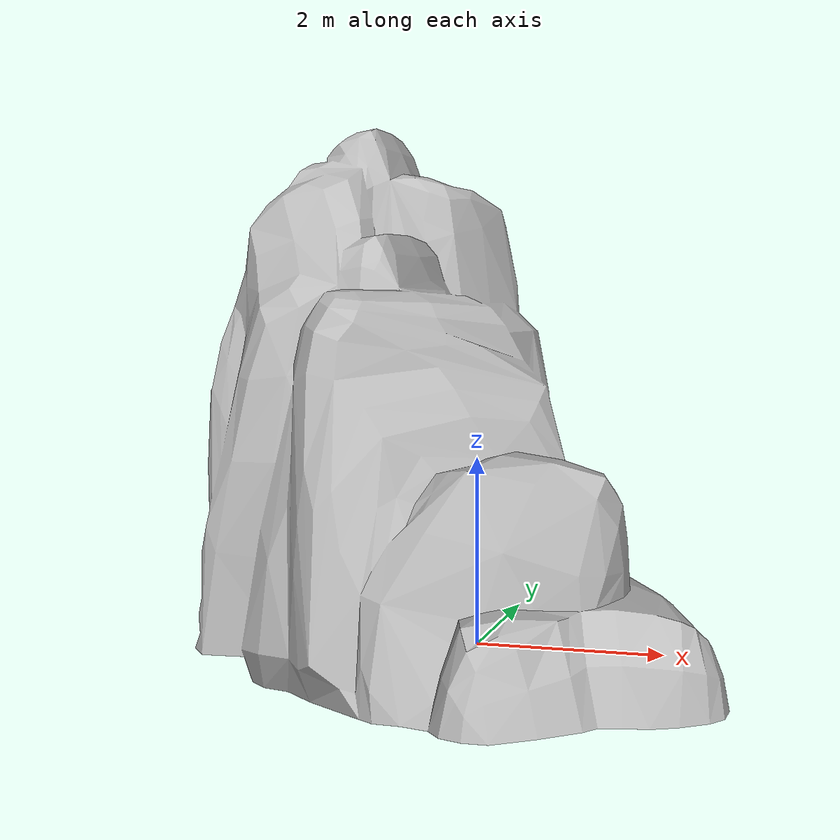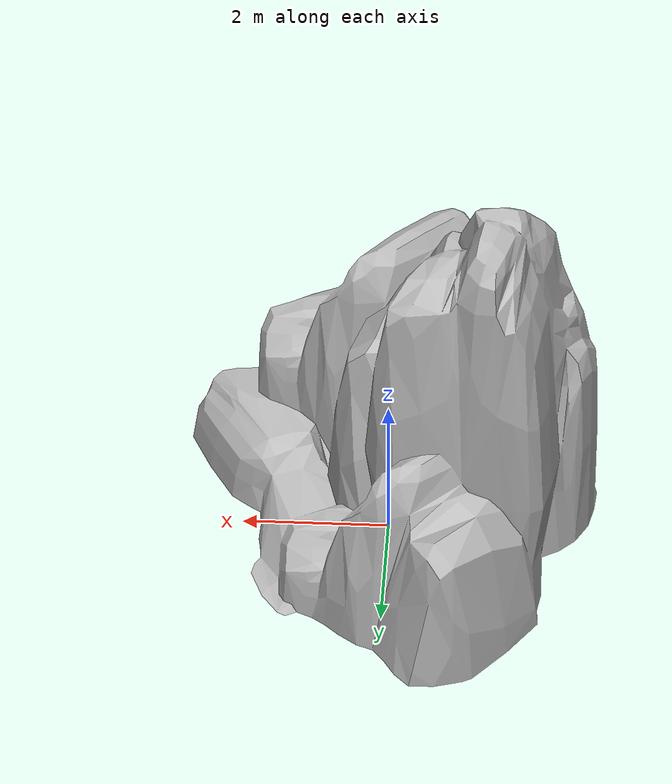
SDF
<sdf version="1.7">
  <model name="rock1">
    <static>true</static>
    <link name="rock1_link">
      <collision name="rock1_collision">
        <geometry>
          <mesh>
            <uri>model://rock1/rock1.dae</uri>
            <scale>1 1 1</scale>
          </mesh>
        </geometry>
      </collision>
      <visual name="rock1_visual">
        <geometry>
          <mesh>
            <uri>model://rock1/rock1.dae</uri>
            <scale>1 1 1</scale>
          </mesh>
        </geometry>
      </visual>
    </link>
  </model>
</sdf>
